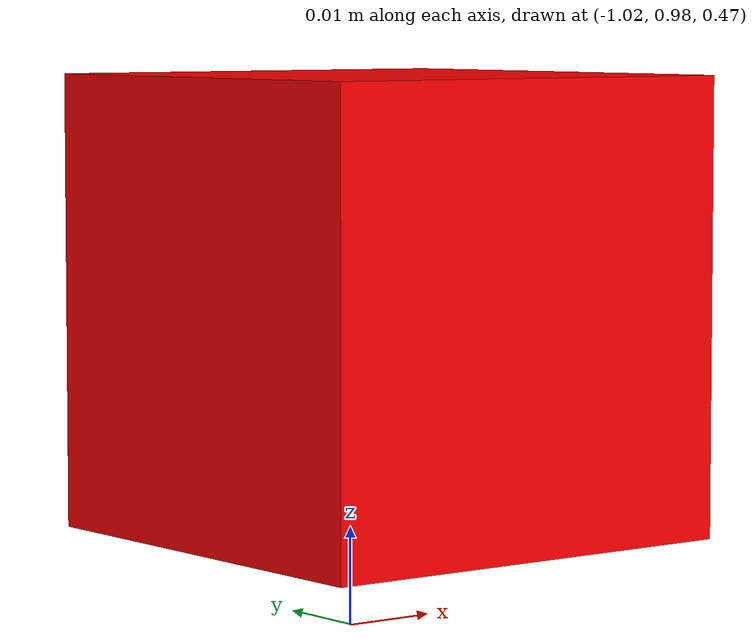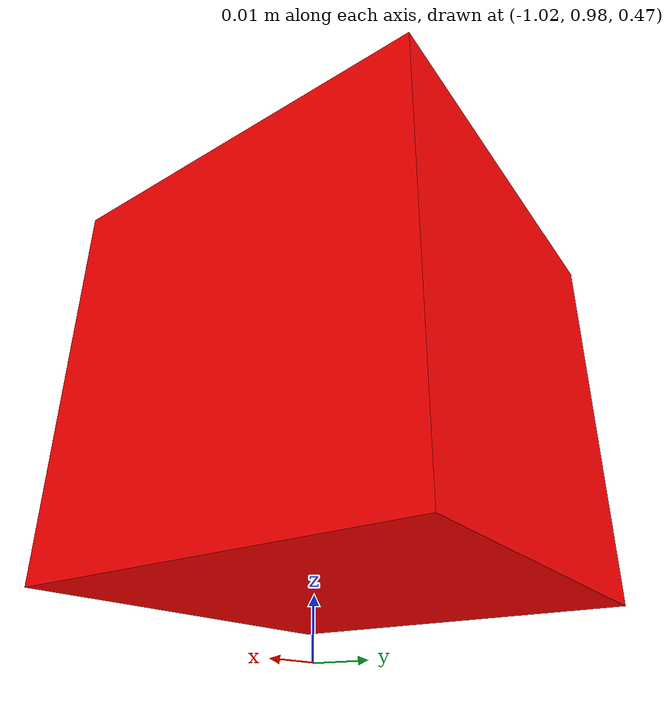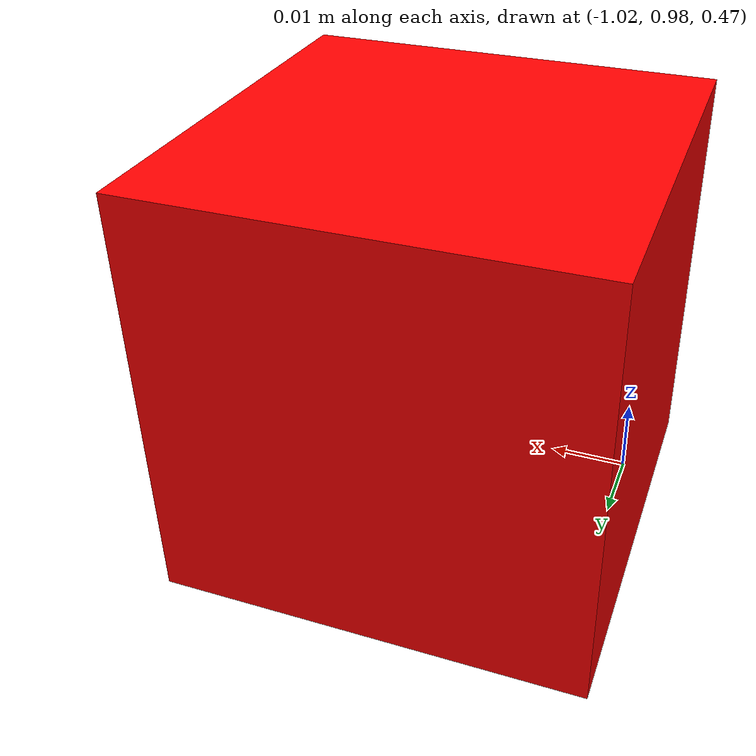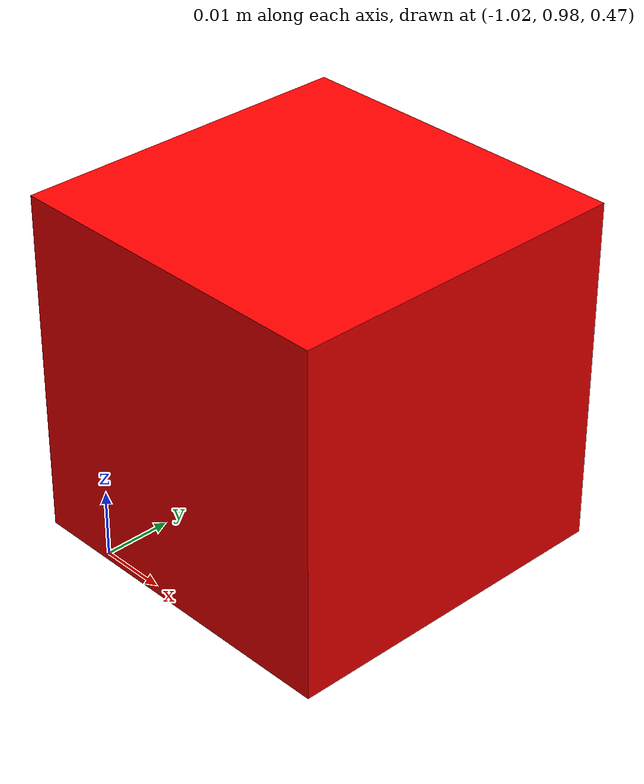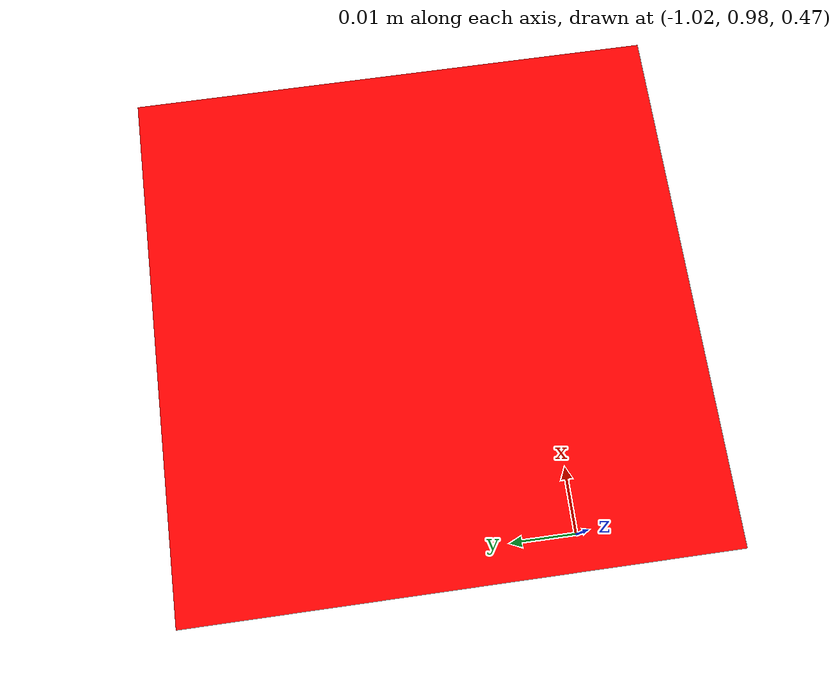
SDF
<?xml version="1.0"?>
<sdf version="1.6">
  <model name="fire">
    <pose>-1 1 0.5 0 0 0</pose>
    <link name="box_link">
      <inertial>
        <inertia>
          <ixx>1</ixx>
          <ixy>0</ixy>
          <ixz>0</ixz>
          <iyy>1</iyy>
          <iyz>0</iyz>
          <izz>1</izz>
        </inertia>
        <mass>1.0</mass>
      </inertial>
      <collision name="box_collision">
        <geometry>
          <box>
            <size>0.05 0.05 0.05</size>
          </box>
        </geometry>
      </collision>
      <visual name="box_visual">
        <geometry>
          <box>
            <size>0.05 0.05 0.05</size>
          </box>
        </geometry>
        <material>
          <ambient>1 0 0 1</ambient>
          <diffuse>1 0 0 1</diffuse>
          <specular>1 0 0 1</specular>
        </material>
        <plugin filename="ignition-gazebo-thermal-system" name="gz::sim::systems::Thermal">
          <temperature>373</temperature>
        </plugin>
      </visual>
    </link>
  </model>
</sdf>
